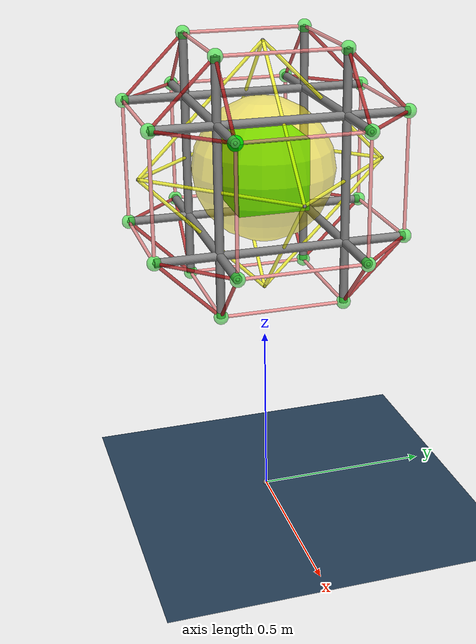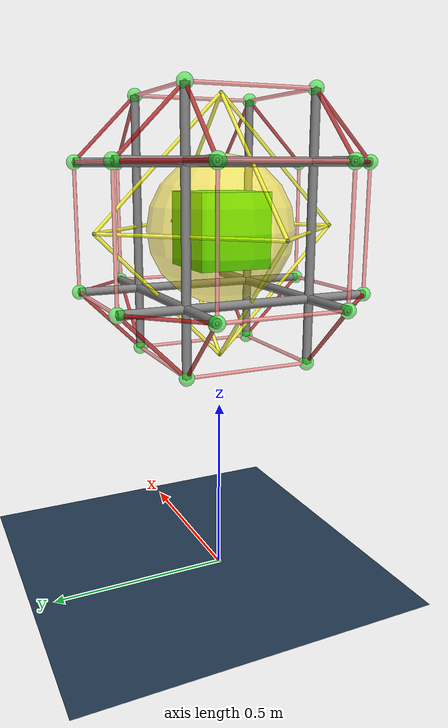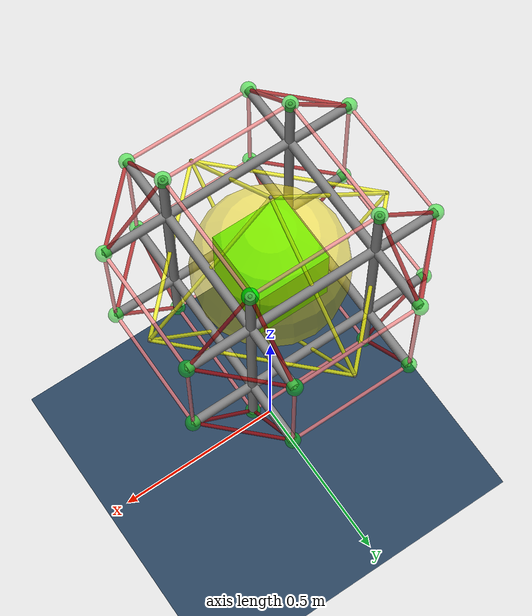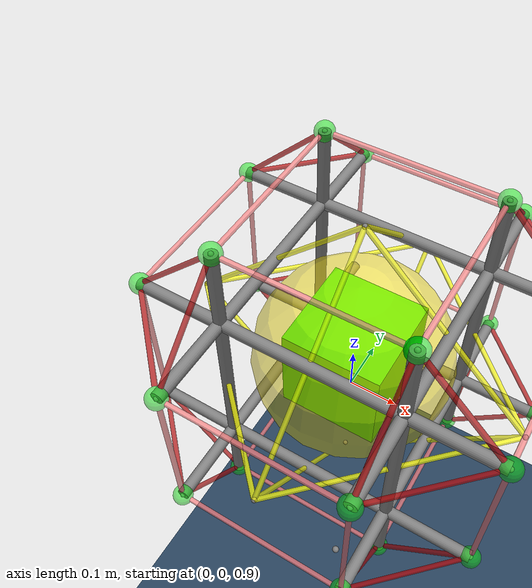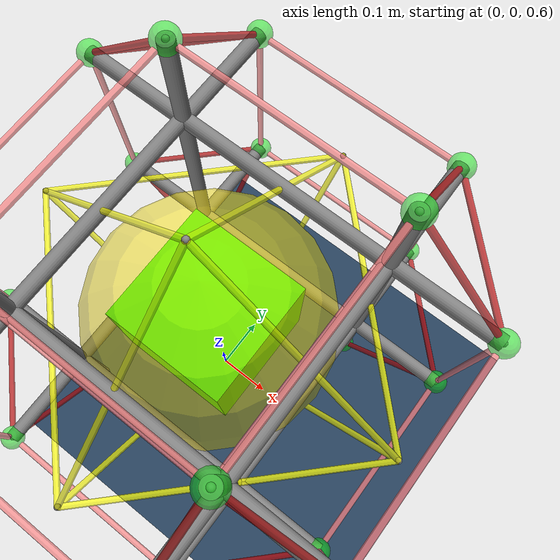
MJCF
<?xml version='1.0' encoding='utf-8'?>
<mujoco model="TT12_environment">
  <compiler autolimits="true" coordinate="local" angle="degree" inertiafromgeom="true" />
  <option timestep="0.001" gravity="0 0 -10" integrator="RK4">
    <flag override="enable" energy="enable" />
  </option>
  <visual>
    <headlight ambient="0.59999999999999998 0.59999999999999998 0.59999999999999998" diffuse="0.29999999999999999 0.29999999999999999 0.29999999999999999" specular="0.10000000000000001 0.10000000000000001 0.10000000000000001" />
  </visual>
  <default>
    <default class="/">
      <joint type="hinge" damping="2" />
      <geom type="capsule" />
      <site type="sphere" size="0.01" />
      <tendon limited="true" range="0 10" width="0.0050000000000000001" rgba="1 0 0 1" damping="10" />
    </default>
    <default class="tt_model_0/">
      <tendon limited="true" range="0 10" width="0.0050000000000000001" rgba="1 0 0 1" damping="10" />
    </default>
    <default class="tt_model_0/rod0_1/" />
    <default class="tt_model_0/rod2_3/" />
    <default class="tt_model_0/rod4_5/" />
    <default class="tt_model_0/rod6_7/" />
    <default class="tt_model_0/rod8_9/" />
    <default class="tt_model_0/rod10_11/" />
    <default class="tt_model_0/rod12_13/" />
    <default class="tt_model_0/rod14_15/" />
    <default class="tt_model_0/rod16_17/" />
    <default class="tt_model_0/rod18_19/" />
    <default class="tt_model_0/rod20_21/" />
    <default class="tt_model_0/rod22_23/" />
    <default class="tt_model_0/middle_platform/" />
  </default>
  <asset>
    <texture name="skybox" type="skybox" builtin="gradient" rgb1="0.29999999999999999 0.5 0.69999999999999996" rgb2="0 0 0" width="512" height="3072" />
    <texture name="2d" type="2d" builtin="checker" rgb1="0.20000000000000001 0.29999999999999999 0.40000000000000002" rgb2="0.10000000000000001 0.20000000000000001 0.29999999999999999" width="300" height="300" />
    <material name="grid" class="/" texture="2d" texrepeat="5 5" reflectance="0.20000000000000001" />
  </asset>
  <worldbody>
    <geom name="floor" class="/" type="plane" size="0 0 0.125" material="grid" friction="0.10000000000000001 0.0050000000000000001 0.0001" solref="0.02 1" solimp="0.90000000000000002 0.94999999999999996 0.001 0.5 2.2000000000000002" pos="0 0 0" />
    <light name="light_-2" class="/" pos="-2 -1 3" dir="2 1 -2" />
    <light name="light_2" class="/" pos="2 -1 3" dir="-2 1 -2" />
    <site name="world_site" class="/" pos="0 0 0" />
    <site name="tt_model_0/middle_site_0_1" class="tt_model_0/" rgba="0 0 0 0" pos="0.17499999999999999 0.17499999999999999 1" />
    <body pos="0.17499999999999999 0.17499999999999999 1" name="tt_model_0/rod0_1/">
      <freejoint name="tt_model_0/rod0_1/" />
      <geom name="tt_model_0/rod0_1/geom0_1" class="tt_model_0/rod0_1/" type="cylinder" size="0.012" mass="0.080000000000000002" fromto="0 0 0.35000000000000009 0 0 -0.34999999999999998" />
      <site name="tt_model_0/rod0_1/node_0" class="tt_model_0/rod0_1/" pos="0 0 0.35000000000000009" />
      <site name="tt_model_0/rod0_1/node_1" class="tt_model_0/rod0_1/" pos="0 0 -0.34999999999999998" />
      <site name="tt_model_0/rod0_1/node_24" class="tt_model_0/rod0_1/" pos="0 0 0" />
      <geom name="tt_model_0/rod0_1/geom_edge_0" class="tt_model_0/rod0_1/" type="sphere" size="0.02" rgba="0 0.90000000000000002 0 0.5" mass="0.0001" pos="0 0 0.35000000000000009" />
      <geom name="tt_model_0/rod0_1/geom_edge_1" class="tt_model_0/rod0_1/" type="sphere" size="0.02" rgba="0 0.90000000000000002 0 0.5" mass="0.0001" pos="0 0 -0.34999999999999998" />
    </body>
    <site name="tt_model_0/middle_site_2_3" class="tt_model_0/" rgba="0 0 0 0" pos="-0.17499999999999999 0.17499999999999999 1" />
    <body pos="-0.17499999999999999 0.17499999999999999 1" name="tt_model_0/rod2_3/">
      <freejoint name="tt_model_0/rod2_3/" />
      <geom name="tt_model_0/rod2_3/geom2_3" class="tt_model_0/rod2_3/" type="cylinder" size="0.012" mass="0.080000000000000002" fromto="0 0 0.35000000000000009 0 0 -0.34999999999999998" />
      <site name="tt_model_0/rod2_3/node_2" class="tt_model_0/rod2_3/" pos="0 0 0.35000000000000009" />
      <site name="tt_model_0/rod2_3/node_3" class="tt_model_0/rod2_3/" pos="0 0 -0.34999999999999998" />
      <site name="tt_model_0/rod2_3/node_25" class="tt_model_0/rod2_3/" pos="0 0 0" />
      <geom name="tt_model_0/rod2_3/geom_edge_2" class="tt_model_0/rod2_3/" type="sphere" size="0.02" rgba="0 0.90000000000000002 0 0.5" mass="0.0001" pos="0 0 0.35000000000000009" />
      <geom name="tt_model_0/rod2_3/geom_edge_3" class="tt_model_0/rod2_3/" type="sphere" size="0.02" rgba="0 0.90000000000000002 0 0.5" mass="0.0001" pos="0 0 -0.34999999999999998" />
    </body>
    <site name="tt_model_0/middle_site_4_5" class="tt_model_0/" rgba="0 0 0 0" pos="-0.17499999999999999 -0.17499999999999999 1" />
    <body pos="-0.17499999999999999 -0.17499999999999999 1" name="tt_model_0/rod4_5/">
      <freejoint name="tt_model_0/rod4_5/" />
      <geom name="tt_model_0/rod4_5/geom4_5" class="tt_model_0/rod4_5/" type="cylinder" size="0.012" mass="0.080000000000000002" fromto="0 0 0.35000000000000009 0 0 -0.34999999999999998" />
      <site name="tt_model_0/rod4_5/node_4" class="tt_model_0/rod4_5/" pos="0 0 0.35000000000000009" />
      <site name="tt_model_0/rod4_5/node_5" class="tt_model_0/rod4_5/" pos="0 0 -0.34999999999999998" />
      <site name="tt_model_0/rod4_5/node_26" class="tt_model_0/rod4_5/" pos="0 0 0" />
      <geom name="tt_model_0/rod4_5/geom_edge_4" class="tt_model_0/rod4_5/" type="sphere" size="0.02" rgba="0 0.90000000000000002 0 0.5" mass="0.0001" pos="0 0 0.35000000000000009" />
      <geom name="tt_model_0/rod4_5/geom_edge_5" class="tt_model_0/rod4_5/" type="sphere" size="0.02" rgba="0 0.90000000000000002 0 0.5" mass="0.0001" pos="0 0 -0.34999999999999998" />
    </body>
    <site name="tt_model_0/middle_site_6_7" class="tt_model_0/" rgba="0 0 0 0" pos="0.17499999999999999 -0.17499999999999999 1" />
    <body pos="0.17499999999999999 -0.17499999999999999 1" name="tt_model_0/rod6_7/">
      <freejoint name="tt_model_0/rod6_7/" />
      <geom name="tt_model_0/rod6_7/geom6_7" class="tt_model_0/rod6_7/" type="cylinder" size="0.012" mass="0.080000000000000002" fromto="0 0 0.35000000000000009 0 0 -0.34999999999999998" />
      <site name="tt_model_0/rod6_7/node_6" class="tt_model_0/rod6_7/" pos="0 0 0.35000000000000009" />
      <site name="tt_model_0/rod6_7/node_7" class="tt_model_0/rod6_7/" pos="0 0 -0.34999999999999998" />
      <site name="tt_model_0/rod6_7/node_27" class="tt_model_0/rod6_7/" pos="0 0 0" />
      <geom name="tt_model_0/rod6_7/geom_edge_6" class="tt_model_0/rod6_7/" type="sphere" size="0.02" rgba="0 0.90000000000000002 0 0.5" mass="0.0001" pos="0 0 0.35000000000000009" />
      <geom name="tt_model_0/rod6_7/geom_edge_7" class="tt_model_0/rod6_7/" type="sphere" size="0.02" rgba="0 0.90000000000000002 0 0.5" mass="0.0001" pos="0 0 -0.34999999999999998" />
    </body>
    <site name="tt_model_0/middle_site_8_9" class="tt_model_0/" rgba="0 0 0 0" pos="0.17499999999999999 0 1.175" />
    <body pos="0.17499999999999999 0 1.175" name="tt_model_0/rod8_9/">
      <freejoint name="tt_model_0/rod8_9/" />
      <geom name="tt_model_0/rod8_9/geom8_9" class="tt_model_0/rod8_9/" type="cylinder" size="0.012" mass="0.080000000000000002" fromto="0 0.34999999999999998 0 0 -0.34999999999999998 0" />
      <site name="tt_model_0/rod8_9/node_8" class="tt_model_0/rod8_9/" pos="0 0.34999999999999998 0" />
      <site name="tt_model_0/rod8_9/node_9" class="tt_model_0/rod8_9/" pos="0 -0.34999999999999998 0" />
      <site name="tt_model_0/rod8_9/node_28" class="tt_model_0/rod8_9/" pos="0 0 0" />
      <geom name="tt_model_0/rod8_9/geom_edge_8" class="tt_model_0/rod8_9/" type="sphere" size="0.02" rgba="0 0.90000000000000002 0 0.5" mass="0.0001" pos="0 0.34999999999999998 0" />
      <geom name="tt_model_0/rod8_9/geom_edge_9" class="tt_model_0/rod8_9/" type="sphere" size="0.02" rgba="0 0.90000000000000002 0 0.5" mass="0.0001" pos="0 -0.34999999999999998 0" />
    </body>
    <site name="tt_model_0/middle_site_10_11" class="tt_model_0/" rgba="0 0 0 0" pos="0.17499999999999999 0 0.82499999999999996" />
    <body pos="0.17499999999999999 0 0.82499999999999996" name="tt_model_0/rod10_11/">
      <freejoint name="tt_model_0/rod10_11/" />
      <geom name="tt_model_0/rod10_11/geom10_11" class="tt_model_0/rod10_11/" type="cylinder" size="0.012" mass="0.080000000000000002" fromto="0 0.34999999999999998 0 0 -0.34999999999999998 0" />
      <site name="tt_model_0/rod10_11/node_10" class="tt_model_0/rod10_11/" pos="0 0.34999999999999998 0" />
      <site name="tt_model_0/rod10_11/node_11" class="tt_model_0/rod10_11/" pos="0 -0.34999999999999998 0" />
      <site name="tt_model_0/rod10_11/node_29" class="tt_model_0/rod10_11/" pos="0 0 0" />
      <geom name="tt_model_0/rod10_11/geom_edge_10" class="tt_model_0/rod10_11/" type="sphere" size="0.02" rgba="0 0.90000000000000002 0 0.5" mass="0.0001" pos="0 0.34999999999999998 0" />
      <geom name="tt_model_0/rod10_11/geom_edge_11" class="tt_model_0/rod10_11/" type="sphere" size="0.02" rgba="0 0.90000000000000002 0 0.5" mass="0.0001" pos="0 -0.34999999999999998 0" />
    </body>
    <site name="tt_model_0/middle_site_12_13" class="tt_model_0/" rgba="0 0 0 0" pos="-0.17499999999999999 0 0.82499999999999996" />
    <body pos="-0.17499999999999999 0 0.82499999999999996" name="tt_model_0/rod12_13/">
      <freejoint name="tt_model_0/rod12_13/" />
      <geom name="tt_model_0/rod12_13/geom12_13" class="tt_model_0/rod12_13/" type="cylinder" size="0.012" mass="0.080000000000000002" fromto="0 0.34999999999999998 0 0 -0.34999999999999998 0" />
      <site name="tt_model_0/rod12_13/node_12" class="tt_model_0/rod12_13/" pos="0 0.34999999999999998 0" />
      <site name="tt_model_0/rod12_13/node_13" class="tt_model_0/rod12_13/" pos="0 -0.34999999999999998 0" />
      <site name="tt_model_0/rod12_13/node_30" class="tt_model_0/rod12_13/" pos="0 0 0" />
      <geom name="tt_model_0/rod12_13/geom_edge_12" class="tt_model_0/rod12_13/" type="sphere" size="0.02" rgba="0 0.90000000000000002 0 0.5" mass="0.0001" pos="0 0.34999999999999998 0" />
      <geom name="tt_model_0/rod12_13/geom_edge_13" class="tt_model_0/rod12_13/" type="sphere" size="0.02" rgba="0 0.90000000000000002 0 0.5" mass="0.0001" pos="0 -0.34999999999999998 0" />
    </body>
    <site name="tt_model_0/middle_site_14_15" class="tt_model_0/" rgba="0 0 0 0" pos="-0.17499999999999999 0 1.175" />
    <body pos="-0.17499999999999999 0 1.175" name="tt_model_0/rod14_15/">
      <freejoint name="tt_model_0/rod14_15/" />
      <geom name="tt_model_0/rod14_15/geom14_15" class="tt_model_0/rod14_15/" type="cylinder" size="0.012" mass="0.080000000000000002" fromto="0 0.34999999999999998 0 0 -0.34999999999999998 0" />
      <site name="tt_model_0/rod14_15/node_14" class="tt_model_0/rod14_15/" pos="0 0.34999999999999998 0" />
      <site name="tt_model_0/rod14_15/node_15" class="tt_model_0/rod14_15/" pos="0 -0.34999999999999998 0" />
      <site name="tt_model_0/rod14_15/node_31" class="tt_model_0/rod14_15/" pos="0 0 0" />
      <geom name="tt_model_0/rod14_15/geom_edge_14" class="tt_model_0/rod14_15/" type="sphere" size="0.02" rgba="0 0.90000000000000002 0 0.5" mass="0.0001" pos="0 0.34999999999999998 0" />
      <geom name="tt_model_0/rod14_15/geom_edge_15" class="tt_model_0/rod14_15/" type="sphere" size="0.02" rgba="0 0.90000000000000002 0 0.5" mass="0.0001" pos="0 -0.34999999999999998 0" />
    </body>
    <site name="tt_model_0/middle_site_16_17" class="tt_model_0/" rgba="0 0 0 0" pos="0 0.17499999999999999 1.175" />
    <body pos="0 0.17499999999999999 1.175" name="tt_model_0/rod16_17/">
      <freejoint name="tt_model_0/rod16_17/" />
      <geom name="tt_model_0/rod16_17/geom16_17" class="tt_model_0/rod16_17/" type="cylinder" size="0.012" mass="0.080000000000000002" fromto="0.34999999999999998 0 0 -0.34999999999999998 0 0" />
      <site name="tt_model_0/rod16_17/node_16" class="tt_model_0/rod16_17/" pos="0.34999999999999998 0 0" />
      <site name="tt_model_0/rod16_17/node_17" class="tt_model_0/rod16_17/" pos="-0.34999999999999998 0 0" />
      <site name="tt_model_0/rod16_17/node_32" class="tt_model_0/rod16_17/" pos="0 0 0" />
      <geom name="tt_model_0/rod16_17/geom_edge_16" class="tt_model_0/rod16_17/" type="sphere" size="0.02" rgba="0 0.90000000000000002 0 0.5" mass="0.0001" pos="0.34999999999999998 0 0" />
      <geom name="tt_model_0/rod16_17/geom_edge_17" class="tt_model_0/rod16_17/" type="sphere" size="0.02" rgba="0 0.90000000000000002 0 0.5" mass="0.0001" pos="-0.34999999999999998 0 0" />
    </body>
    <site name="tt_model_0/middle_site_18_19" class="tt_model_0/" rgba="0 0 0 0" pos="0 -0.17499999999999999 1.175" />
    <body pos="0 -0.17499999999999999 1.175" name="tt_model_0/rod18_19/">
      <freejoint name="tt_model_0/rod18_19/" />
      <geom name="tt_model_0/rod18_19/geom18_19" class="tt_model_0/rod18_19/" type="cylinder" size="0.012" mass="0.080000000000000002" fromto="0.34999999999999998 0 0 -0.34999999999999998 0 0" />
      <site name="tt_model_0/rod18_19/node_18" class="tt_model_0/rod18_19/" pos="0.34999999999999998 0 0" />
      <site name="tt_model_0/rod18_19/node_19" class="tt_model_0/rod18_19/" pos="-0.34999999999999998 0 0" />
      <site name="tt_model_0/rod18_19/node_33" class="tt_model_0/rod18_19/" pos="0 0 0" />
      <geom name="tt_model_0/rod18_19/geom_edge_18" class="tt_model_0/rod18_19/" type="sphere" size="0.02" rgba="0 0.90000000000000002 0 0.5" mass="0.0001" pos="0.34999999999999998 0 0" />
      <geom name="tt_model_0/rod18_19/geom_edge_19" class="tt_model_0/rod18_19/" type="sphere" size="0.02" rgba="0 0.90000000000000002 0 0.5" mass="0.0001" pos="-0.34999999999999998 0 0" />
    </body>
    <site name="tt_model_0/middle_site_20_21" class="tt_model_0/" rgba="0 0 0 0" pos="0 -0.17499999999999999 0.82499999999999996" />
    <body pos="0 -0.17499999999999999 0.82499999999999996" name="tt_model_0/rod20_21/">
      <freejoint name="tt_model_0/rod20_21/" />
      <geom name="tt_model_0/rod20_21/geom20_21" class="tt_model_0/rod20_21/" type="cylinder" size="0.012" mass="0.080000000000000002" fromto="0.34999999999999998 0 0 -0.34999999999999998 0 0" />
      <site name="tt_model_0/rod20_21/node_20" class="tt_model_0/rod20_21/" pos="0.34999999999999998 0 0" />
      <site name="tt_model_0/rod20_21/node_21" class="tt_model_0/rod20_21/" pos="-0.34999999999999998 0 0" />
      <site name="tt_model_0/rod20_21/node_34" class="tt_model_0/rod20_21/" pos="0 0 0" />
      <geom name="tt_model_0/rod20_21/geom_edge_20" class="tt_model_0/rod20_21/" type="sphere" size="0.02" rgba="0 0.90000000000000002 0 0.5" mass="0.0001" pos="0.34999999999999998 0 0" />
      <geom name="tt_model_0/rod20_21/geom_edge_21" class="tt_model_0/rod20_21/" type="sphere" size="0.02" rgba="0 0.90000000000000002 0 0.5" mass="0.0001" pos="-0.34999999999999998 0 0" />
    </body>
    <site name="tt_model_0/middle_site_22_23" class="tt_model_0/" rgba="0 0 0 0" pos="0 0.17499999999999999 0.82499999999999996" />
    <body pos="0 0.17499999999999999 0.82499999999999996" name="tt_model_0/rod22_23/">
      <freejoint name="tt_model_0/rod22_23/" />
      <geom name="tt_model_0/rod22_23/geom22_23" class="tt_model_0/rod22_23/" type="cylinder" size="0.012" mass="0.080000000000000002" fromto="0.34999999999999998 0 0 -0.34999999999999998 0 0" />
      <site name="tt_model_0/rod22_23/node_22" class="tt_model_0/rod22_23/" pos="0.34999999999999998 0 0" />
      <site name="tt_model_0/rod22_23/node_23" class="tt_model_0/rod22_23/" pos="-0.34999999999999998 0 0" />
      <site name="tt_model_0/rod22_23/node_35" class="tt_model_0/rod22_23/" pos="0 0 0" />
      <geom name="tt_model_0/rod22_23/geom_edge_22" class="tt_model_0/rod22_23/" type="sphere" size="0.02" rgba="0 0.90000000000000002 0 0.5" mass="0.0001" pos="0.34999999999999998 0 0" />
      <geom name="tt_model_0/rod22_23/geom_edge_23" class="tt_model_0/rod22_23/" type="sphere" size="0.02" rgba="0 0.90000000000000002 0 0.5" mass="0.0001" pos="-0.34999999999999998 0 0" />
    </body>
    <site name="tt_model_0/middle_element_site" class="tt_model_0/" rgba="0 0 0 0" pos="0 0 1" />
    <body pos="0 0 1" name="tt_model_0/middle_platform/">
      <freejoint name="tt_model_0/middle_platform/" />
      <inertial pos="0 0 0" mass="0.40000000000000002" diaginertia="0.01 0.01 0.01" />
      <site name="tt_model_0/middle_platform/node_40" class="tt_model_0/middle_platform/" pos="0 -0.34999999999999998 0" />
      <site name="tt_model_0/middle_platform/node_38" class="tt_model_0/middle_platform/" pos="-0.34999999999999998 0 0" />
      <site name="tt_model_0/middle_platform/node_42" class="tt_model_0/middle_platform/" pos="0 0 -0.34999999999999998" />
      <site name="tt_model_0/middle_platform/node_41" class="tt_model_0/middle_platform/" pos="0 0 0.35000000000000009" />
      <site name="tt_model_0/middle_platform/node_37" class="tt_model_0/middle_platform/" pos="0.34999999999999998 0 0" />
      <site name="tt_model_0/middle_platform/node_39" class="tt_model_0/middle_platform/" pos="0 0.34999999999999998 0" />
      <site name="tt_model_0/middle_platform/outside_site" class="tt_model_0/middle_platform/" rgba="1 0.90000000000000002 0 0.5" size="0.20000000000000001" pos="0 0 0" />
      <body name="tt_model_0/middle_platform/inside_ball" pos="0 0 0">
        <inertial pos="0 0 0" mass="6.5999999999999996" diaginertia="0.12 0.12 0.12" />
        <joint name="tt_model_0/middle_platform/x_control" class="tt_model_0/middle_platform/" type="hinge" axis="1 0 0" armature="1" damping="0.10000000000000001" />
        <joint name="tt_model_0/middle_platform/y_control" class="tt_model_0/middle_platform/" type="hinge" axis="0 1 0" />
        <joint name="tt_model_0/middle_platform/z_control" class="tt_model_0/middle_platform/" type="hinge" axis="0 0 1" />
        <site name="tt_model_0/middle_platform/inside_site" class="tt_model_0/middle_platform/" type="box" rgba="0 0.90000000000000002 0 1" size="0.10000000000000001 0.10000000000000001 0.10000000000000001" pos="0 0 0" />
      </body>
    </body>
  </worldbody>
  <contact>
    <exclude name="tt_model_0/exclude_rod0_1_rod2_3" body1="tt_model_0/rod0_1/" body2="tt_model_0/rod2_3/" />
    <exclude name="tt_model_0/exclude_rod0_1_rod4_5" body1="tt_model_0/rod0_1/" body2="tt_model_0/rod4_5/" />
    <exclude name="tt_model_0/exclude_rod0_1_rod6_7" body1="tt_model_0/rod0_1/" body2="tt_model_0/rod6_7/" />
    <exclude name="tt_model_0/exclude_rod0_1_rod8_9" body1="tt_model_0/rod0_1/" body2="tt_model_0/rod8_9/" />
    <exclude name="tt_model_0/exclude_rod0_1_rod10_11" body1="tt_model_0/rod0_1/" body2="tt_model_0/rod10_11/" />
    <exclude name="tt_model_0/exclude_rod0_1_rod12_13" body1="tt_model_0/rod0_1/" body2="tt_model_0/rod12_13/" />
    <exclude name="tt_model_0/exclude_rod0_1_rod14_15" body1="tt_model_0/rod0_1/" body2="tt_model_0/rod14_15/" />
    <exclude name="tt_model_0/exclude_rod0_1_rod16_17" body1="tt_model_0/rod0_1/" body2="tt_model_0/rod16_17/" />
    <exclude name="tt_model_0/exclude_rod0_1_rod18_19" body1="tt_model_0/rod0_1/" body2="tt_model_0/rod18_19/" />
    <exclude name="tt_model_0/exclude_rod0_1_rod20_21" body1="tt_model_0/rod0_1/" body2="tt_model_0/rod20_21/" />
    <exclude name="tt_model_0/exclude_rod0_1_rod22_23" body1="tt_model_0/rod0_1/" body2="tt_model_0/rod22_23/" />
    <exclude name="tt_model_0/exclude_rod2_3_rod4_5" body1="tt_model_0/rod2_3/" body2="tt_model_0/rod4_5/" />
    <exclude name="tt_model_0/exclude_rod2_3_rod6_7" body1="tt_model_0/rod2_3/" body2="tt_model_0/rod6_7/" />
    <exclude name="tt_model_0/exclude_rod2_3_rod8_9" body1="tt_model_0/rod2_3/" body2="tt_model_0/rod8_9/" />
    <exclude name="tt_model_0/exclude_rod2_3_rod10_11" body1="tt_model_0/rod2_3/" body2="tt_model_0/rod10_11/" />
    <exclude name="tt_model_0/exclude_rod2_3_rod12_13" body1="tt_model_0/rod2_3/" body2="tt_model_0/rod12_13/" />
    <exclude name="tt_model_0/exclude_rod2_3_rod14_15" body1="tt_model_0/rod2_3/" body2="tt_model_0/rod14_15/" />
    <exclude name="tt_model_0/exclude_rod2_3_rod16_17" body1="tt_model_0/rod2_3/" body2="tt_model_0/rod16_17/" />
    <exclude name="tt_model_0/exclude_rod2_3_rod18_19" body1="tt_model_0/rod2_3/" body2="tt_model_0/rod18_19/" />
    <exclude name="tt_model_0/exclude_rod2_3_rod20_21" body1="tt_model_0/rod2_3/" body2="tt_model_0/rod20_21/" />
    <exclude name="tt_model_0/exclude_rod2_3_rod22_23" body1="tt_model_0/rod2_3/" body2="tt_model_0/rod22_23/" />
    <exclude name="tt_model_0/exclude_rod4_5_rod6_7" body1="tt_model_0/rod4_5/" body2="tt_model_0/rod6_7/" />
    <exclude name="tt_model_0/exclude_rod4_5_rod8_9" body1="tt_model_0/rod4_5/" body2="tt_model_0/rod8_9/" />
    <exclude name="tt_model_0/exclude_rod4_5_rod10_11" body1="tt_model_0/rod4_5/" body2="tt_model_0/rod10_11/" />
    <exclude name="tt_model_0/exclude_rod4_5_rod12_13" body1="tt_model_0/rod4_5/" body2="tt_model_0/rod12_13/" />
    <exclude name="tt_model_0/exclude_rod4_5_rod14_15" body1="tt_model_0/rod4_5/" body2="tt_model_0/rod14_15/" />
    <exclude name="tt_model_0/exclude_rod4_5_rod16_17" body1="tt_model_0/rod4_5/" body2="tt_model_0/rod16_17/" />
    <exclude name="tt_model_0/exclude_rod4_5_rod18_19" body1="tt_model_0/rod4_5/" body2="tt_model_0/rod18_19/" />
    <exclude name="tt_model_0/exclude_rod4_5_rod20_21" body1="tt_model_0/rod4_5/" body2="tt_model_0/rod20_21/" />
    <exclude name="tt_model_0/exclude_rod4_5_rod22_23" body1="tt_model_0/rod4_5/" body2="tt_model_0/rod22_23/" />
    <exclude name="tt_model_0/exclude_rod6_7_rod8_9" body1="tt_model_0/rod6_7/" body2="tt_model_0/rod8_9/" />
    <exclude name="tt_model_0/exclude_rod6_7_rod10_11" body1="tt_model_0/rod6_7/" body2="tt_model_0/rod10_11/" />
    <exclude name="tt_model_0/exclude_rod6_7_rod12_13" body1="tt_model_0/rod6_7/" body2="tt_model_0/rod12_13/" />
    <exclude name="tt_model_0/exclude_rod6_7_rod14_15" body1="tt_model_0/rod6_7/" body2="tt_model_0/rod14_15/" />
    <exclude name="tt_model_0/exclude_rod6_7_rod16_17" body1="tt_model_0/rod6_7/" body2="tt_model_0/rod16_17/" />
    <exclude name="tt_model_0/exclude_rod6_7_rod18_19" body1="tt_model_0/rod6_7/" body2="tt_model_0/rod18_19/" />
    <exclude name="tt_model_0/exclude_rod6_7_rod20_21" body1="tt_model_0/rod6_7/" body2="tt_model_0/rod20_21/" />
    <exclude name="tt_model_0/exclude_rod6_7_rod22_23" body1="tt_model_0/rod6_7/" body2="tt_model_0/rod22_23/" />
    <exclude name="tt_model_0/exclude_rod8_9_rod10_11" body1="tt_model_0/rod8_9/" body2="tt_model_0/rod10_11/" />
    <exclude name="tt_model_0/exclude_rod8_9_rod12_13" body1="tt_model_0/rod8_9/" body2="tt_model_0/rod12_13/" />
    <exclude name="tt_model_0/exclude_rod8_9_rod14_15" body1="tt_model_0/rod8_9/" body2="tt_model_0/rod14_15/" />
    <exclude name="tt_model_0/exclude_rod8_9_rod16_17" body1="tt_model_0/rod8_9/" body2="tt_model_0/rod16_17/" />
    <exclude name="tt_model_0/exclude_rod8_9_rod18_19" body1="tt_model_0/rod8_9/" body2="tt_model_0/rod18_19/" />
    <exclude name="tt_model_0/exclude_rod8_9_rod20_21" body1="tt_model_0/rod8_9/" body2="tt_model_0/rod20_21/" />
    <exclude name="tt_model_0/exclude_rod8_9_rod22_23" body1="tt_model_0/rod8_9/" body2="tt_model_0/rod22_23/" />
    <exclude name="tt_model_0/exclude_rod10_11_rod12_13" body1="tt_model_0/rod10_11/" body2="tt_model_0/rod12_13/" />
    <exclude name="tt_model_0/exclude_rod10_11_rod14_15" body1="tt_model_0/rod10_11/" body2="tt_model_0/rod14_15/" />
    <exclude name="tt_model_0/exclude_rod10_11_rod16_17" body1="tt_model_0/rod10_11/" body2="tt_model_0/rod16_17/" />
    <exclude name="tt_model_0/exclude_rod10_11_rod18_19" body1="tt_model_0/rod10_11/" body2="tt_model_0/rod18_19/" />
    <exclude name="tt_model_0/exclude_rod10_11_rod20_21" body1="tt_model_0/rod10_11/" body2="tt_model_0/rod20_21/" />
    <exclude name="tt_model_0/exclude_rod10_11_rod22_23" body1="tt_model_0/rod10_11/" body2="tt_model_0/rod22_23/" />
    <exclude name="tt_model_0/exclude_rod12_13_rod14_15" body1="tt_model_0/rod12_13/" body2="tt_model_0/rod14_15/" />
    <exclude name="tt_model_0/exclude_rod12_13_rod16_17" body1="tt_model_0/rod12_13/" body2="tt_model_0/rod16_17/" />
    <exclude name="tt_model_0/exclude_rod12_13_rod18_19" body1="tt_model_0/rod12_13/" body2="tt_model_0/rod18_19/" />
    <exclude name="tt_model_0/exclude_rod12_13_rod20_21" body1="tt_model_0/rod12_13/" body2="tt_model_0/rod20_21/" />
    <exclude name="tt_model_0/exclude_rod12_13_rod22_23" body1="tt_model_0/rod12_13/" body2="tt_model_0/rod22_23/" />
    <exclude name="tt_model_0/exclude_rod14_15_rod16_17" body1="tt_model_0/rod14_15/" body2="tt_model_0/rod16_17/" />
    <exclude name="tt_model_0/exclude_rod14_15_rod18_19" body1="tt_model_0/rod14_15/" body2="tt_model_0/rod18_19/" />
    <exclude name="tt_model_0/exclude_rod14_15_rod20_21" body1="tt_model_0/rod14_15/" body2="tt_model_0/rod20_21/" />
    <exclude name="tt_model_0/exclude_rod14_15_rod22_23" body1="tt_model_0/rod14_15/" body2="tt_model_0/rod22_23/" />
    <exclude name="tt_model_0/exclude_rod16_17_rod18_19" body1="tt_model_0/rod16_17/" body2="tt_model_0/rod18_19/" />
    <exclude name="tt_model_0/exclude_rod16_17_rod20_21" body1="tt_model_0/rod16_17/" body2="tt_model_0/rod20_21/" />
    <exclude name="tt_model_0/exclude_rod16_17_rod22_23" body1="tt_model_0/rod16_17/" body2="tt_model_0/rod22_23/" />
    <exclude name="tt_model_0/exclude_rod18_19_rod20_21" body1="tt_model_0/rod18_19/" body2="tt_model_0/rod20_21/" />
    <exclude name="tt_model_0/exclude_rod18_19_rod22_23" body1="tt_model_0/rod18_19/" body2="tt_model_0/rod22_23/" />
    <exclude name="tt_model_0/exclude_rod20_21_rod22_23" body1="tt_model_0/rod20_21/" body2="tt_model_0/rod22_23/" />
  </contact>
  <tendon>
    <spatial name="tt_model_0/td0_2" class="tt_model_0/" rgba="1 0.5 0.5 0.69999999999999996" springlength="0.22" stiffness="771">
      <site site="tt_model_0/rod0_1/node_0" />
      <site site="tt_model_0/rod2_3/node_2" />
    </spatial>
    <spatial name="tt_model_0/td2_4" class="tt_model_0/" rgba="1 0.5 0.5 0.69999999999999996" springlength="0.22" stiffness="771">
      <site site="tt_model_0/rod2_3/node_2" />
      <site site="tt_model_0/rod4_5/node_4" />
    </spatial>
    <spatial name="tt_model_0/td4_6" class="tt_model_0/" rgba="1 0.5 0.5 0.69999999999999996" springlength="0.22" stiffness="771">
      <site site="tt_model_0/rod4_5/node_4" />
      <site site="tt_model_0/rod6_7/node_6" />
    </spatial>
    <spatial name="tt_model_0/td6_0" class="tt_model_0/" rgba="1 0.5 0.5 0.69999999999999996" springlength="0.22" stiffness="771">
      <site site="tt_model_0/rod6_7/node_6" />
      <site site="tt_model_0/rod0_1/node_0" />
    </spatial>
    <spatial name="tt_model_0/td1_3" class="tt_model_0/" rgba="1 0.5 0.5 0.69999999999999996" springlength="0.22" stiffness="771">
      <site site="tt_model_0/rod0_1/node_1" />
      <site site="tt_model_0/rod2_3/node_3" />
    </spatial>
    <spatial name="tt_model_0/td3_5" class="tt_model_0/" rgba="1 0.5 0.5 0.69999999999999996" springlength="0.22" stiffness="771">
      <site site="tt_model_0/rod2_3/node_3" />
      <site site="tt_model_0/rod4_5/node_5" />
    </spatial>
    <spatial name="tt_model_0/td5_7" class="tt_model_0/" rgba="1 0.5 0.5 0.69999999999999996" springlength="0.22" stiffness="771">
      <site site="tt_model_0/rod4_5/node_5" />
      <site site="tt_model_0/rod6_7/node_7" />
    </spatial>
    <spatial name="tt_model_0/td7_1" class="tt_model_0/" rgba="1 0.5 0.5 0.69999999999999996" springlength="0.22" stiffness="771">
      <site site="tt_model_0/rod6_7/node_7" />
      <site site="tt_model_0/rod0_1/node_1" />
    </spatial>
    <spatial name="tt_model_0/td8_10" class="tt_model_0/" rgba="1 0.5 0.5 0.69999999999999996" springlength="0.22" stiffness="771">
      <site site="tt_model_0/rod8_9/node_8" />
      <site site="tt_model_0/rod10_11/node_10" />
    </spatial>
    <spatial name="tt_model_0/td10_12" class="tt_model_0/" rgba="1 0.5 0.5 0.69999999999999996" springlength="0.22" stiffness="771">
      <site site="tt_model_0/rod10_11/node_10" />
      <site site="tt_model_0/rod12_13/node_12" />
    </spatial>
    <spatial name="tt_model_0/td12_14" class="tt_model_0/" rgba="1 0.5 0.5 0.69999999999999996" springlength="0.22" stiffness="771">
      <site site="tt_model_0/rod12_13/node_12" />
      <site site="tt_model_0/rod14_15/node_14" />
    </spatial>
    <spatial name="tt_model_0/td14_8" class="tt_model_0/" rgba="1 0.5 0.5 0.69999999999999996" springlength="0.22" stiffness="771">
      <site site="tt_model_0/rod14_15/node_14" />
      <site site="tt_model_0/rod8_9/node_8" />
    </spatial>
    <spatial name="tt_model_0/td9_11" class="tt_model_0/" rgba="1 0.5 0.5 0.69999999999999996" springlength="0.22" stiffness="771">
      <site site="tt_model_0/rod8_9/node_9" />
      <site site="tt_model_0/rod10_11/node_11" />
    </spatial>
    <spatial name="tt_model_0/td11_13" class="tt_model_0/" rgba="1 0.5 0.5 0.69999999999999996" springlength="0.22" stiffness="771">
      <site site="tt_model_0/rod10_11/node_11" />
      <site site="tt_model_0/rod12_13/node_13" />
    </spatial>
    <spatial name="tt_model_0/td13_15" class="tt_model_0/" rgba="1 0.5 0.5 0.69999999999999996" springlength="0.22" stiffness="771">
      <site site="tt_model_0/rod12_13/node_13" />
      <site site="tt_model_0/rod14_15/node_15" />
    </spatial>
    <spatial name="tt_model_0/td15_9" class="tt_model_0/" rgba="1 0.5 0.5 0.69999999999999996" springlength="0.22" stiffness="771">
      <site site="tt_model_0/rod14_15/node_15" />
      <site site="tt_model_0/rod8_9/node_9" />
    </spatial>
    <spatial name="tt_model_0/td16_18" class="tt_model_0/" rgba="1 0.5 0.5 0.69999999999999996" springlength="0.22" stiffness="771">
      <site site="tt_model_0/rod16_17/node_16" />
      <site site="tt_model_0/rod18_19/node_18" />
    </spatial>
    <spatial name="tt_model_0/td18_20" class="tt_model_0/" rgba="1 0.5 0.5 0.69999999999999996" springlength="0.22" stiffness="771">
      <site site="tt_model_0/rod18_19/node_18" />
      <site site="tt_model_0/rod20_21/node_20" />
    </spatial>
    <spatial name="tt_model_0/td20_22" class="tt_model_0/" rgba="1 0.5 0.5 0.69999999999999996" springlength="0.22" stiffness="771">
      <site site="tt_model_0/rod20_21/node_20" />
      <site site="tt_model_0/rod22_23/node_22" />
    </spatial>
    <spatial name="tt_model_0/td22_16" class="tt_model_0/" rgba="1 0.5 0.5 0.69999999999999996" springlength="0.22" stiffness="771">
      <site site="tt_model_0/rod22_23/node_22" />
      <site site="tt_model_0/rod16_17/node_16" />
    </spatial>
    <spatial name="tt_model_0/td17_19" class="tt_model_0/" rgba="1 0.5 0.5 0.69999999999999996" springlength="0.22" stiffness="771">
      <site site="tt_model_0/rod16_17/node_17" />
      <site site="tt_model_0/rod18_19/node_19" />
    </spatial>
    <spatial name="tt_model_0/td19_21" class="tt_model_0/" rgba="1 0.5 0.5 0.69999999999999996" springlength="0.22" stiffness="771">
      <site site="tt_model_0/rod18_19/node_19" />
      <site site="tt_model_0/rod20_21/node_21" />
    </spatial>
    <spatial name="tt_model_0/td21_23" class="tt_model_0/" rgba="1 0.5 0.5 0.69999999999999996" springlength="0.22" stiffness="771">
      <site site="tt_model_0/rod20_21/node_21" />
      <site site="tt_model_0/rod22_23/node_23" />
    </spatial>
    <spatial name="tt_model_0/td23_17" class="tt_model_0/" rgba="1 0.5 0.5 0.69999999999999996" springlength="0.22" stiffness="771">
      <site site="tt_model_0/rod22_23/node_23" />
      <site site="tt_model_0/rod16_17/node_17" />
    </spatial>
    <spatial name="tt_model_0/td0_16" class="tt_model_0/" rgba="0.69999999999999996 0 0 0.69999999999999996" springlength="0.10000000000000001" stiffness="2000">
      <site site="tt_model_0/rod0_1/node_0" />
      <site site="tt_model_0/rod16_17/node_16" />
    </spatial>
    <spatial name="tt_model_0/td2_17" class="tt_model_0/" rgba="0.69999999999999996 0 0 0.69999999999999996" springlength="0.10000000000000001" stiffness="2000">
      <site site="tt_model_0/rod2_3/node_2" />
      <site site="tt_model_0/rod16_17/node_17" />
    </spatial>
    <spatial name="tt_model_0/td4_19" class="tt_model_0/" rgba="0.69999999999999996 0 0 0.69999999999999996" springlength="0.10000000000000001" stiffness="2000">
      <site site="tt_model_0/rod4_5/node_4" />
      <site site="tt_model_0/rod18_19/node_19" />
    </spatial>
    <spatial name="tt_model_0/td6_18" class="tt_model_0/" rgba="0.69999999999999996 0 0 0.69999999999999996" springlength="0.10000000000000001" stiffness="2000">
      <site site="tt_model_0/rod6_7/node_6" />
      <site site="tt_model_0/rod18_19/node_18" />
    </spatial>
    <spatial name="tt_model_0/td1_22" class="tt_model_0/" rgba="0.69999999999999996 0 0 0.69999999999999996" springlength="0.10000000000000001" stiffness="2000">
      <site site="tt_model_0/rod0_1/node_1" />
      <site site="tt_model_0/rod22_23/node_22" />
    </spatial>
    <spatial name="tt_model_0/td3_23" class="tt_model_0/" rgba="0.69999999999999996 0 0 0.69999999999999996" springlength="0.10000000000000001" stiffness="2000">
      <site site="tt_model_0/rod2_3/node_3" />
      <site site="tt_model_0/rod22_23/node_23" />
    </spatial>
    <spatial name="tt_model_0/td5_21" class="tt_model_0/" rgba="0.69999999999999996 0 0 0.69999999999999996" springlength="0.10000000000000001" stiffness="2000">
      <site site="tt_model_0/rod4_5/node_5" />
      <site site="tt_model_0/rod20_21/node_21" />
    </spatial>
    <spatial name="tt_model_0/td7_20" class="tt_model_0/" rgba="0.69999999999999996 0 0 0.69999999999999996" springlength="0.10000000000000001" stiffness="2000">
      <site site="tt_model_0/rod6_7/node_7" />
      <site site="tt_model_0/rod20_21/node_20" />
    </spatial>
    <spatial name="tt_model_0/td8_0" class="tt_model_0/" rgba="0.69999999999999996 0 0 0.69999999999999996" springlength="0.10000000000000001" stiffness="2000">
      <site site="tt_model_0/rod8_9/node_8" />
      <site site="tt_model_0/rod0_1/node_0" />
    </spatial>
    <spatial name="tt_model_0/td8_16" class="tt_model_0/" rgba="0.69999999999999996 0 0 0.69999999999999996" springlength="0.10000000000000001" stiffness="2000">
      <site site="tt_model_0/rod8_9/node_8" />
      <site site="tt_model_0/rod16_17/node_16" />
    </spatial>
    <spatial name="tt_model_0/td9_6" class="tt_model_0/" rgba="0.69999999999999996 0 0 0.69999999999999996" springlength="0.10000000000000001" stiffness="2000">
      <site site="tt_model_0/rod8_9/node_9" />
      <site site="tt_model_0/rod6_7/node_6" />
    </spatial>
    <spatial name="tt_model_0/td9_18" class="tt_model_0/" rgba="0.69999999999999996 0 0 0.69999999999999996" springlength="0.10000000000000001" stiffness="2000">
      <site site="tt_model_0/rod8_9/node_9" />
      <site site="tt_model_0/rod18_19/node_18" />
    </spatial>
    <spatial name="tt_model_0/td10_1" class="tt_model_0/" rgba="0.69999999999999996 0 0 0.69999999999999996" springlength="0.10000000000000001" stiffness="2000">
      <site site="tt_model_0/rod10_11/node_10" />
      <site site="tt_model_0/rod0_1/node_1" />
    </spatial>
    <spatial name="tt_model_0/td10_22" class="tt_model_0/" rgba="0.69999999999999996 0 0 0.69999999999999996" springlength="0.10000000000000001" stiffness="2000">
      <site site="tt_model_0/rod10_11/node_10" />
      <site site="tt_model_0/rod22_23/node_22" />
    </spatial>
    <spatial name="tt_model_0/td11_7" class="tt_model_0/" rgba="0.69999999999999996 0 0 0.69999999999999996" springlength="0.10000000000000001" stiffness="2000">
      <site site="tt_model_0/rod10_11/node_11" />
      <site site="tt_model_0/rod6_7/node_7" />
    </spatial>
    <spatial name="tt_model_0/td11_20" class="tt_model_0/" rgba="0.69999999999999996 0 0 0.69999999999999996" springlength="0.10000000000000001" stiffness="2000">
      <site site="tt_model_0/rod10_11/node_11" />
      <site site="tt_model_0/rod20_21/node_20" />
    </spatial>
    <spatial name="tt_model_0/td12_3" class="tt_model_0/" rgba="0.69999999999999996 0 0 0.69999999999999996" springlength="0.10000000000000001" stiffness="2000">
      <site site="tt_model_0/rod12_13/node_12" />
      <site site="tt_model_0/rod2_3/node_3" />
    </spatial>
    <spatial name="tt_model_0/td12_23" class="tt_model_0/" rgba="0.69999999999999996 0 0 0.69999999999999996" springlength="0.10000000000000001" stiffness="2000">
      <site site="tt_model_0/rod12_13/node_12" />
      <site site="tt_model_0/rod22_23/node_23" />
    </spatial>
    <spatial name="tt_model_0/td13_5" class="tt_model_0/" rgba="0.69999999999999996 0 0 0.69999999999999996" springlength="0.10000000000000001" stiffness="2000">
      <site site="tt_model_0/rod12_13/node_13" />
      <site site="tt_model_0/rod4_5/node_5" />
    </spatial>
    <spatial name="tt_model_0/td13_21" class="tt_model_0/" rgba="0.69999999999999996 0 0 0.69999999999999996" springlength="0.10000000000000001" stiffness="2000">
      <site site="tt_model_0/rod12_13/node_13" />
      <site site="tt_model_0/rod20_21/node_21" />
    </spatial>
    <spatial name="tt_model_0/td14_2" class="tt_model_0/" rgba="0.69999999999999996 0 0 0.69999999999999996" springlength="0.10000000000000001" stiffness="2000">
      <site site="tt_model_0/rod14_15/node_14" />
      <site site="tt_model_0/rod2_3/node_2" />
    </spatial>
    <spatial name="tt_model_0/td14_17" class="tt_model_0/" rgba="0.69999999999999996 0 0 0.69999999999999996" springlength="0.10000000000000001" stiffness="2000">
      <site site="tt_model_0/rod14_15/node_14" />
      <site site="tt_model_0/rod16_17/node_17" />
    </spatial>
    <spatial name="tt_model_0/td15_4" class="tt_model_0/" rgba="0.69999999999999996 0 0 0.69999999999999996" springlength="0.10000000000000001" stiffness="2000">
      <site site="tt_model_0/rod14_15/node_15" />
      <site site="tt_model_0/rod4_5/node_4" />
    </spatial>
    <spatial name="tt_model_0/td15_19" class="tt_model_0/" rgba="0.69999999999999996 0 0 0.69999999999999996" springlength="0.10000000000000001" stiffness="2000">
      <site site="tt_model_0/rod14_15/node_15" />
      <site site="tt_model_0/rod18_19/node_19" />
    </spatial>
    <spatial name="tt_model_0/td24_37" class="tt_model_0/" rgba="1 1 0 0.69999999999999996" springlength="0.17000000000000001" stiffness="67000">
      <site site="tt_model_0/rod0_1/node_24" />
      <site site="tt_model_0/middle_platform/node_37" />
    </spatial>
    <spatial name="tt_model_0/td28_37" class="tt_model_0/" rgba="1 1 0 0.69999999999999996" springlength="0.17000000000000001" stiffness="67000">
      <site site="tt_model_0/rod8_9/node_28" />
      <site site="tt_model_0/middle_platform/node_37" />
    </spatial>
    <spatial name="tt_model_0/td27_37" class="tt_model_0/" rgba="1 1 0 0.69999999999999996" springlength="0.17000000000000001" stiffness="67000">
      <site site="tt_model_0/rod6_7/node_27" />
      <site site="tt_model_0/middle_platform/node_37" />
    </spatial>
    <spatial name="tt_model_0/td29_37" class="tt_model_0/" rgba="1 1 0 0.69999999999999996" springlength="0.17000000000000001" stiffness="67000">
      <site site="tt_model_0/rod10_11/node_29" />
      <site site="tt_model_0/middle_platform/node_37" />
    </spatial>
    <spatial name="tt_model_0/td25_38" class="tt_model_0/" rgba="1 1 0 0.69999999999999996" springlength="0.17000000000000001" stiffness="67000">
      <site site="tt_model_0/rod2_3/node_25" />
      <site site="tt_model_0/middle_platform/node_38" />
    </spatial>
    <spatial name="tt_model_0/td31_38" class="tt_model_0/" rgba="1 1 0 0.69999999999999996" springlength="0.17000000000000001" stiffness="67000">
      <site site="tt_model_0/rod14_15/node_31" />
      <site site="tt_model_0/middle_platform/node_38" />
    </spatial>
    <spatial name="tt_model_0/td26_38" class="tt_model_0/" rgba="1 1 0 0.69999999999999996" springlength="0.17000000000000001" stiffness="67000">
      <site site="tt_model_0/rod4_5/node_26" />
      <site site="tt_model_0/middle_platform/node_38" />
    </spatial>
    <spatial name="tt_model_0/td30_38" class="tt_model_0/" rgba="1 1 0 0.69999999999999996" springlength="0.17000000000000001" stiffness="67000">
      <site site="tt_model_0/rod12_13/node_30" />
      <site site="tt_model_0/middle_platform/node_38" />
    </spatial>
    <spatial name="tt_model_0/td35_39" class="tt_model_0/" rgba="1 1 0 0.69999999999999996" springlength="0.17000000000000001" stiffness="67000">
      <site site="tt_model_0/rod22_23/node_35" />
      <site site="tt_model_0/middle_platform/node_39" />
    </spatial>
    <spatial name="tt_model_0/td25_39" class="tt_model_0/" rgba="1 1 0 0.69999999999999996" springlength="0.17000000000000001" stiffness="67000">
      <site site="tt_model_0/rod2_3/node_25" />
      <site site="tt_model_0/middle_platform/node_39" />
    </spatial>
    <spatial name="tt_model_0/td32_39" class="tt_model_0/" rgba="1 1 0 0.69999999999999996" springlength="0.17000000000000001" stiffness="67000">
      <site site="tt_model_0/rod16_17/node_32" />
      <site site="tt_model_0/middle_platform/node_39" />
    </spatial>
    <spatial name="tt_model_0/td24_39" class="tt_model_0/" rgba="1 1 0 0.69999999999999996" springlength="0.17000000000000001" stiffness="67000">
      <site site="tt_model_0/rod0_1/node_24" />
      <site site="tt_model_0/middle_platform/node_39" />
    </spatial>
    <spatial name="tt_model_0/td34_40" class="tt_model_0/" rgba="1 1 0 0.69999999999999996" springlength="0.17000000000000001" stiffness="67000">
      <site site="tt_model_0/rod20_21/node_34" />
      <site site="tt_model_0/middle_platform/node_40" />
    </spatial>
    <spatial name="tt_model_0/td26_40" class="tt_model_0/" rgba="1 1 0 0.69999999999999996" springlength="0.17000000000000001" stiffness="67000">
      <site site="tt_model_0/rod4_5/node_26" />
      <site site="tt_model_0/middle_platform/node_40" />
    </spatial>
    <spatial name="tt_model_0/td33_40" class="tt_model_0/" rgba="1 1 0 0.69999999999999996" springlength="0.17000000000000001" stiffness="67000">
      <site site="tt_model_0/rod18_19/node_33" />
      <site site="tt_model_0/middle_platform/node_40" />
    </spatial>
    <spatial name="tt_model_0/td27_40" class="tt_model_0/" rgba="1 1 0 0.69999999999999996" springlength="0.17000000000000001" stiffness="67000">
      <site site="tt_model_0/rod6_7/node_27" />
      <site site="tt_model_0/middle_platform/node_40" />
    </spatial>
    <spatial name="tt_model_0/td32_41" class="tt_model_0/" rgba="1 1 0 0.69999999999999996" springlength="0.17000000000000001" stiffness="67000">
      <site site="tt_model_0/rod16_17/node_32" />
      <site site="tt_model_0/middle_platform/node_41" />
    </spatial>
    <spatial name="tt_model_0/td31_41" class="tt_model_0/" rgba="1 1 0 0.69999999999999996" springlength="0.17000000000000001" stiffness="67000">
      <site site="tt_model_0/rod14_15/node_31" />
      <site site="tt_model_0/middle_platform/node_41" />
    </spatial>
    <spatial name="tt_model_0/td33_41" class="tt_model_0/" rgba="1 1 0 0.69999999999999996" springlength="0.17000000000000001" stiffness="67000">
      <site site="tt_model_0/rod18_19/node_33" />
      <site site="tt_model_0/middle_platform/node_41" />
    </spatial>
    <spatial name="tt_model_0/td28_41" class="tt_model_0/" rgba="1 1 0 0.69999999999999996" springlength="0.17000000000000001" stiffness="67000">
      <site site="tt_model_0/rod8_9/node_28" />
      <site site="tt_model_0/middle_platform/node_41" />
    </spatial>
    <spatial name="tt_model_0/td35_42" class="tt_model_0/" rgba="1 1 0 0.69999999999999996" springlength="0.17000000000000001" stiffness="67000">
      <site site="tt_model_0/rod22_23/node_35" />
      <site site="tt_model_0/middle_platform/node_42" />
    </spatial>
    <spatial name="tt_model_0/td30_42" class="tt_model_0/" rgba="1 1 0 0.69999999999999996" springlength="0.17000000000000001" stiffness="67000">
      <site site="tt_model_0/rod12_13/node_30" />
      <site site="tt_model_0/middle_platform/node_42" />
    </spatial>
    <spatial name="tt_model_0/td29_42" class="tt_model_0/" rgba="1 1 0 0.69999999999999996" springlength="0.17000000000000001" stiffness="67000">
      <site site="tt_model_0/rod10_11/node_29" />
      <site site="tt_model_0/middle_platform/node_42" />
    </spatial>
    <spatial name="tt_model_0/td34_42" class="tt_model_0/" rgba="1 1 0 0.69999999999999996" springlength="0.17000000000000001" stiffness="67000">
      <site site="tt_model_0/rod20_21/node_34" />
      <site site="tt_model_0/middle_platform/node_42" />
    </spatial>
  </tendon>
  <actuator>
    <motor name="tt_model_0/torque_x_ctrl" class="tt_model_0/" ctrllimited="true" ctrlrange="-10 10" gear="1" joint="tt_model_0/middle_platform/x_control" />
    <velocity name="tt_model_0/velocity_x_ctrl" class="tt_model_0/" ctrlrange="0 100" joint="tt_model_0/middle_platform/x_control" kv="10" />
  </actuator>
  <sensor>
    <framepos name="tt_model_0/pos_outside_ball" objtype="body" objname="tt_model_0/middle_platform/" reftype="site" refname="world_site" />
    <framepos name="tt_model_0/pos_inside_ball" objtype="body" objname="tt_model_0/middle_platform/inside_ball" reftype="site" refname="world_site" />
    <frameangvel name="tt_model_0/angvel_outside_ball" objtype="body" objname="tt_model_0/middle_platform/" reftype="site" refname="world_site" />
    <frameangvel name="tt_model_0/angvel_inside_ball" objtype="body" objname="tt_model_0/middle_platform/inside_ball" reftype="site" refname="world_site" />
    <frameangacc name="tt_model_0/angacc_outside_ball" objtype="body" objname="tt_model_0/middle_platform/" />
    <frameangacc name="tt_model_0/angacc_inside_ball" objtype="body" objname="tt_model_0/middle_platform/inside_ball" />
    <accelerometer name="tt_model_0//unnamed_sensor_6" site="tt_model_0/middle_platform/inside_site" />
  </sensor>
</mujoco>
